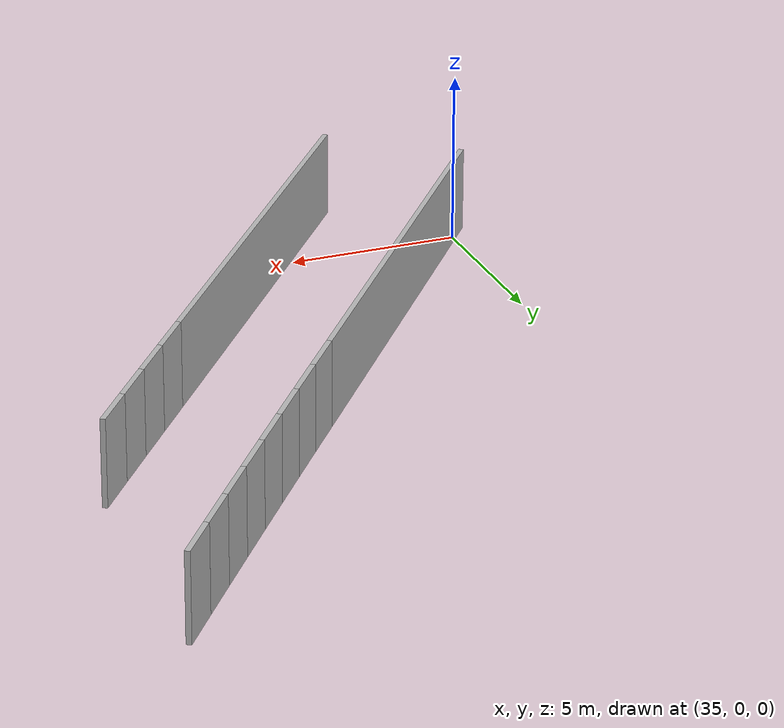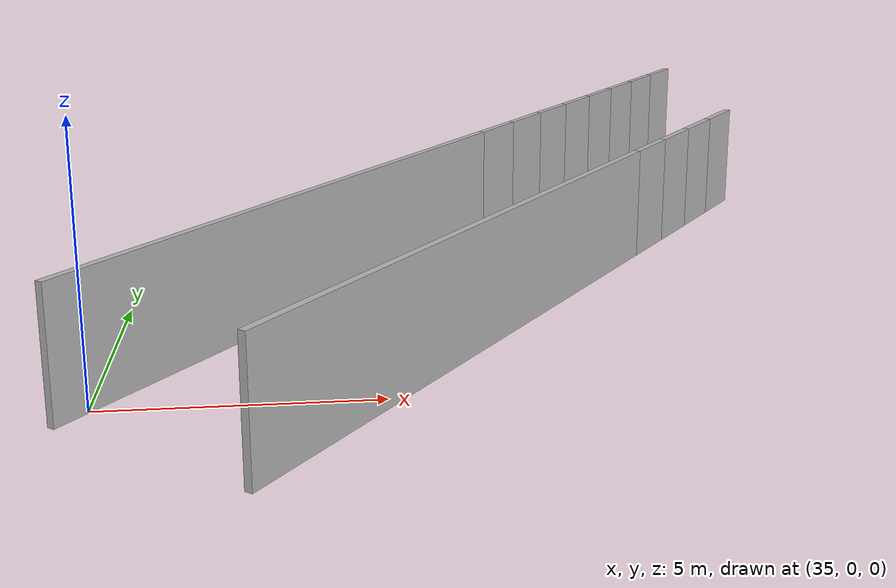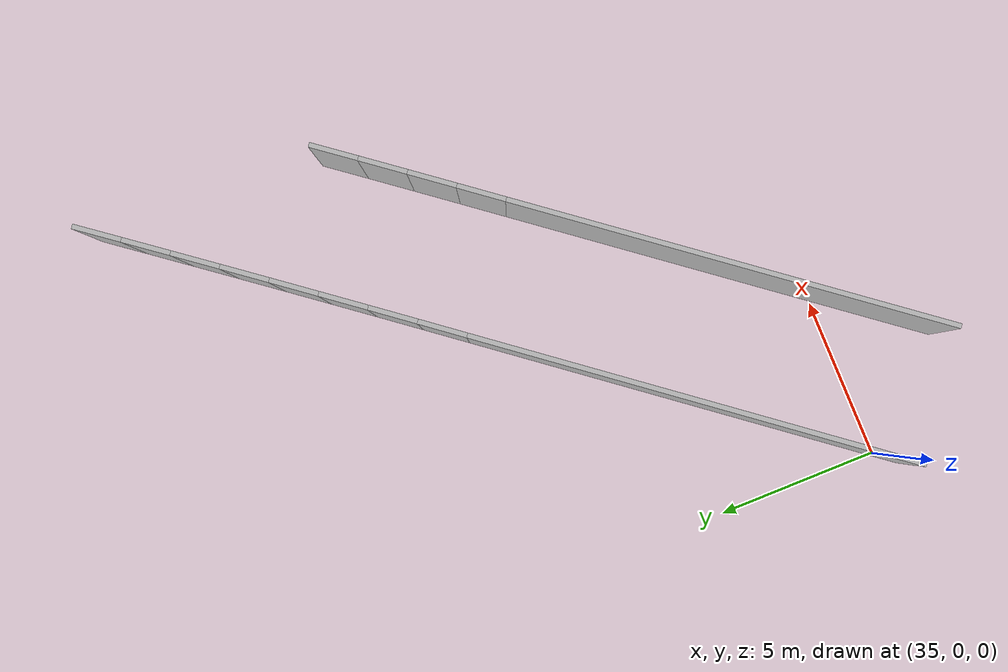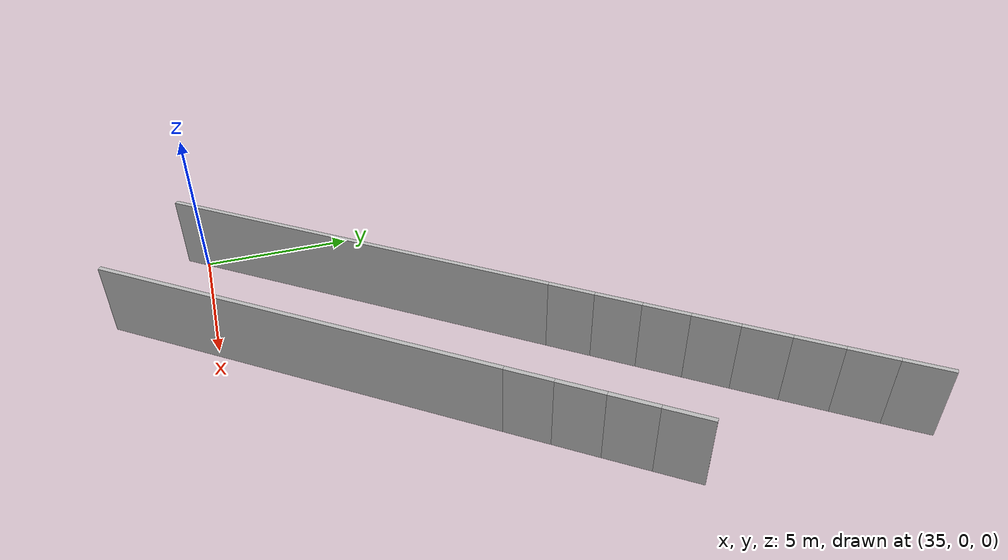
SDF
<?xml version="1.0" ?>
<sdf version="1.6">
  <model name="sps_4213">
    <pose frame="">0 0 0 0 -0 0</pose>
    <static>1</static>
    <self_collide>0</self_collide>
    <allow_auto_disable>0</allow_auto_disable>
    <link name="Wall250">
      <kinematic>0</kinematic>
      <gravity>1</gravity>
      <self_collide>0</self_collide>
      <collision name="collision">
        <geometry>
          <box>
            <size>13.7169 0.15 2.5</size>
          </box>
        </geometry>
        <pose frame="">0 0 0 0 -0 0</pose>
      </collision>
      <visual name="visual">
        <geometry>
          <box>
            <size>13.7169 0.15 2.5</size>
          </box>
        </geometry>
        <pose frame="">0 0 0 0 -0 0</pose>
        <cast_shadows>1</cast_shadows>
        <transparency>0.0</transparency>
      </visual>
      <pose frame="">41.9678 2.31419 1.25 0 0 -2.22473</pose>
    </link>
    <link name="Wall474">
      <kinematic>0</kinematic>
      <gravity>1</gravity>
      <self_collide>0</self_collide>
      <collision name="collision">
        <geometry>
          <box>
            <size>13.7281 0.15 2.5</size>
          </box>
        </geometry>
        <pose frame="">0 0 0 0 -0 0</pose>
      </collision>
      <visual name="visual">
        <geometry>
          <box>
            <size>13.7281 0.15 2.5</size>
          </box>
        </geometry>
        <pose frame="">0 0 0 0 -0 0</pose>
        <cast_shadows>1</cast_shadows>
        <transparency>0.0</transparency>
      </visual>
      <pose frame="">38.6811 4.83159 1.25 0 -0 0.916844</pose>
    </link>
    <link name="Wall4263">
      <kinematic>0</kinematic>
      <gravity>1</gravity>
      <self_collide>0</self_collide>
      <collision name="collision">
        <geometry>
          <box>
            <size>1.5025 0.15 2.5</size>
          </box>
        </geometry>
        <pose frame="">0 0 0 0 -0 0</pose>
      </collision>
      <visual name="visual">
        <geometry>
          <box>
            <size>1.5025 0.15 2.5</size>
          </box>
        </geometry>
        <pose frame="">0 0 0 0 -0 0</pose>
        <cast_shadows>1</cast_shadows>
        <transparency>0.0</transparency>
      </visual>
      <pose frame="">46.5969 8.3539 1.25 0 -0 0.916701</pose>
    </link>
    <link name="Wall4264">
      <kinematic>0</kinematic>
      <gravity>1</gravity>
      <self_collide>0</self_collide>
      <collision name="collision">
        <geometry>
          <box>
            <size>1.50299 0.15 2.5</size>
          </box>
        </geometry>
        <pose frame="">0 0 0 0 -0 0</pose>
      </collision>
      <visual name="visual">
        <geometry>
          <box>
            <size>1.50299 0.15 2.5</size>
          </box>
        </geometry>
        <pose frame="">0 0 0 0 -0 0</pose>
        <cast_shadows>1</cast_shadows>
        <transparency>0.0</transparency>
      </visual>
      <pose frame="">47.5103 9.54719 1.25 0 -0 0.91828</pose>
    </link>
    <link name="Wall4265">
      <kinematic>0</kinematic>
      <gravity>1</gravity>
      <self_collide>0</self_collide>
      <collision name="collision">
        <geometry>
          <box>
            <size>1.50314 0.15 2.5</size>
          </box>
        </geometry>
        <pose frame="">0 0 0 0 -0 0</pose>
      </collision>
      <visual name="visual">
        <geometry>
          <box>
            <size>1.50314 0.15 2.5</size>
          </box>
        </geometry>
        <pose frame="">0 0 0 0 -0 0</pose>
        <cast_shadows>1</cast_shadows>
        <transparency>0.0</transparency>
      </visual>
      <pose frame="">48.4221 10.7421 1.25 0 -0 0.919686</pose>
    </link>
    <link name="Wall4266">
      <kinematic>0</kinematic>
      <gravity>1</gravity>
      <self_collide>0</self_collide>
      <collision name="collision">
        <geometry>
          <box>
            <size>1.50288 0.15 2.5</size>
          </box>
        </geometry>
        <pose frame="">0 0 0 0 -0 0</pose>
      </collision>
      <visual name="visual">
        <geometry>
          <box>
            <size>1.50288 0.15 2.5</size>
          </box>
        </geometry>
        <pose frame="">0 0 0 0 -0 0</pose>
        <cast_shadows>1</cast_shadows>
        <transparency>0.0</transparency>
      </visual>
      <pose frame="">49.3321 11.9384 1.25 0 -0 0.92139</pose>
    </link>
    <link name="Wall5988">
      <kinematic>0</kinematic>
      <gravity>1</gravity>
      <self_collide>0</self_collide>
      <collision name="collision">
        <geometry>
          <box>
            <size>1.49649 0.15 2.5</size>
          </box>
        </geometry>
        <pose frame="">0 0 0 0 -0 0</pose>
      </collision>
      <visual name="visual">
        <geometry>
          <box>
            <size>1.49649 0.15 2.5</size>
          </box>
        </geometry>
        <pose frame="">0 0 0 0 -0 0</pose>
        <cast_shadows>1</cast_shadows>
        <transparency>0.0</transparency>
      </visual>
      <pose frame="">43.3121 10.8732 1.25 0 -0 0.916446</pose>
    </link>
    <link name="Wall5989">
      <kinematic>0</kinematic>
      <gravity>1</gravity>
      <self_collide>0</self_collide>
      <collision name="collision">
        <geometry>
          <box>
            <size>1.49653 0.15 2.5</size>
          </box>
        </geometry>
        <pose frame="">0 0 0 0 -0 0</pose>
      </collision>
      <visual name="visual">
        <geometry>
          <box>
            <size>1.49653 0.15 2.5</size>
          </box>
        </geometry>
        <pose frame="">0 0 0 0 -0 0</pose>
        <cast_shadows>1</cast_shadows>
        <transparency>0.0</transparency>
      </visual>
      <pose frame="">44.2219 12.0614 1.25 0 -0 0.918216</pose>
    </link>
    <link name="Wall5990">
      <kinematic>0</kinematic>
      <gravity>1</gravity>
      <self_collide>0</self_collide>
      <collision name="collision">
        <geometry>
          <box>
            <size>1.49642 0.15 2.5</size>
          </box>
        </geometry>
        <pose frame="">0 0 0 0 -0 0</pose>
      </collision>
      <visual name="visual">
        <geometry>
          <box>
            <size>1.49642 0.15 2.5</size>
          </box>
        </geometry>
        <pose frame="">0 0 0 0 -0 0</pose>
        <cast_shadows>1</cast_shadows>
        <transparency>0.0</transparency>
      </visual>
      <pose frame="">45.1296 13.2511 1.25 0 -0 0.919798</pose>
    </link>
    <link name="Wall5991">
      <kinematic>0</kinematic>
      <gravity>1</gravity>
      <self_collide>0</self_collide>
      <collision name="collision">
        <geometry>
          <box>
            <size>1.49662 0.15 2.5</size>
          </box>
        </geometry>
        <pose frame="">0 0 0 0 -0 0</pose>
      </collision>
      <visual name="visual">
        <geometry>
          <box>
            <size>1.49662 0.15 2.5</size>
          </box>
        </geometry>
        <pose frame="">0 0 0 0 -0 0</pose>
        <cast_shadows>1</cast_shadows>
        <transparency>0.0</transparency>
      </visual>
      <pose frame="">46.0356 14.4422 1.25 0 -0 0.921235</pose>
    </link>
    <link name="Wall5992">
      <kinematic>0</kinematic>
      <gravity>1</gravity>
      <self_collide>0</self_collide>
      <collision name="collision">
        <geometry>
          <box>
            <size>1.49636 0.15 2.5</size>
          </box>
        </geometry>
        <pose frame="">0 0 0 0 -0 0</pose>
      </collision>
      <visual name="visual">
        <geometry>
          <box>
            <size>1.49636 0.15 2.5</size>
          </box>
        </geometry>
        <pose frame="">0 0 0 0 -0 0</pose>
        <cast_shadows>1</cast_shadows>
        <transparency>0.0</transparency>
      </visual>
      <pose frame="">46.9398 15.6347 1.25 0 -0 0.922947</pose>
    </link>
    <link name="Wall5993">
      <kinematic>0</kinematic>
      <gravity>1</gravity>
      <self_collide>0</self_collide>
      <collision name="collision">
        <geometry>
          <box>
            <size>1.49658 0.15 2.5</size>
          </box>
        </geometry>
        <pose frame="">0 0 0 0 -0 0</pose>
      </collision>
      <visual name="visual">
        <geometry>
          <box>
            <size>1.49658 0.15 2.5</size>
          </box>
        </geometry>
        <pose frame="">0 0 0 0 -0 0</pose>
        <cast_shadows>1</cast_shadows>
        <transparency>0.0</transparency>
      </visual>
      <pose frame="">47.8418 16.8287 1.25 0 -0 0.924587</pose>
    </link>
    <link name="Wall5994">
      <kinematic>0</kinematic>
      <gravity>1</gravity>
      <self_collide>0</self_collide>
      <collision name="collision">
        <geometry>
          <box>
            <size>1.49658 0.15 2.5</size>
          </box>
        </geometry>
        <pose frame="">0 0 0 0 -0 0</pose>
      </collision>
      <visual name="visual">
        <geometry>
          <box>
            <size>1.49658 0.15 2.5</size>
          </box>
        </geometry>
        <pose frame="">0 0 0 0 -0 0</pose>
        <cast_shadows>1</cast_shadows>
        <transparency>0.0</transparency>
      </visual>
      <pose frame="">48.7421 18.0242 1.25 0 -0 0.926072</pose>
    </link>
    <link name="Wall5995">
      <kinematic>0</kinematic>
      <gravity>1</gravity>
      <self_collide>0</self_collide>
      <collision name="collision">
        <geometry>
          <box>
            <size>1.49655 0.15 2.5</size>
          </box>
        </geometry>
        <pose frame="">0 0 0 0 -0 0</pose>
      </collision>
      <visual name="visual">
        <geometry>
          <box>
            <size>1.49655 0.15 2.5</size>
          </box>
        </geometry>
        <pose frame="">0 0 0 0 -0 0</pose>
        <cast_shadows>1</cast_shadows>
        <transparency>0.0</transparency>
      </visual>
      <pose frame="">49.6406 19.2211 1.25 0 -0 0.927736</pose>
    </link>
  </model>
</sdf>
